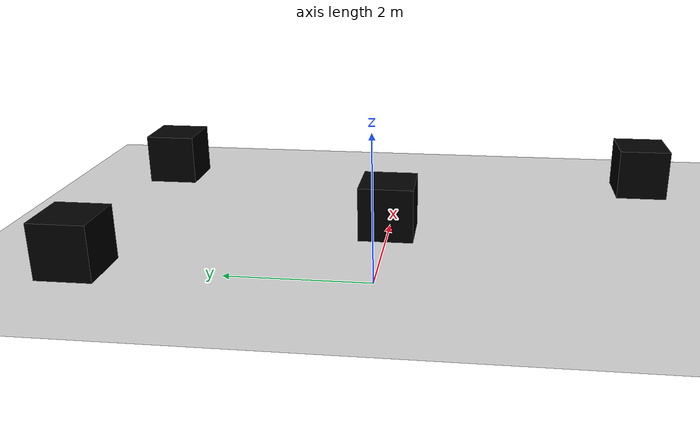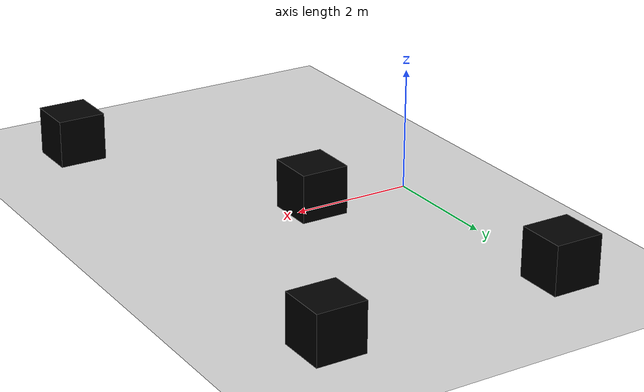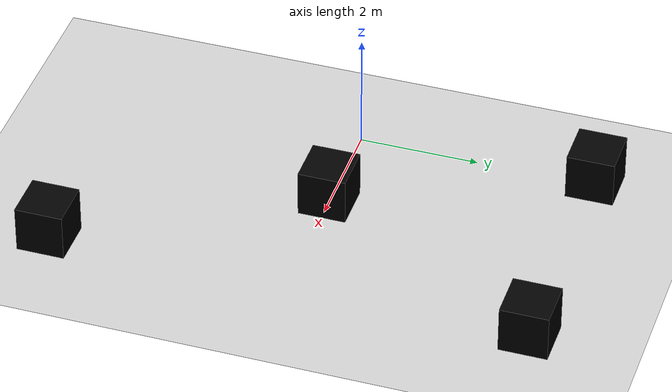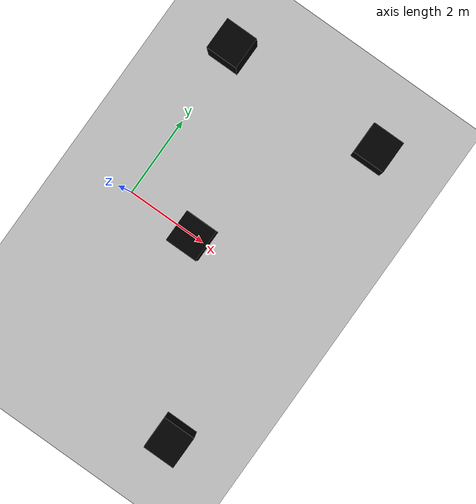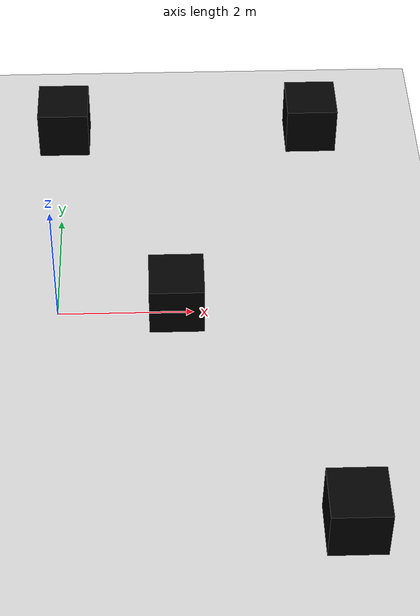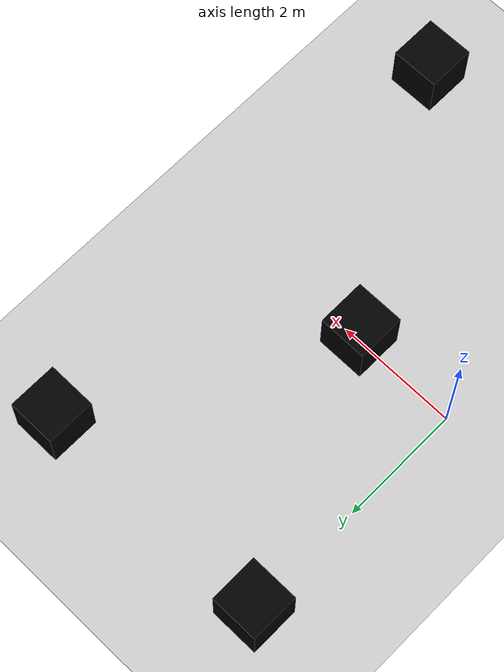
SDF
<?xml version="1.0" ?>
<sdf version="1.4">
  <world name="default">
    <!-- A global light source -->
    <include>
      <uri>model://sun</uri>
    </include>
    <!-- A ground plane -->
    <include>
      <uri>model://ground_plane</uri>
    </include>
    <include>
      <uri>model://AruCo_Block_0</uri>
      <name>AruCo_Block_0</name>
    </include>
    <include>
      <uri>model://AruCo_Block_1</uri>
      <name>AruCo_Block_1</name>
    </include>
    <include>
      <uri>model://AruCo_Block_2</uri>
      <name>AruCo_Block_2</name>
    </include>
    <include>
      <uri>model://AruCo_Block_3</uri>
      <name>AruCo_Block_3</name>
    </include>
    <!-- Own physics settings to speed up simulation -->
    <physics type='ode'>
      <max_step_size>0.01</max_step_size>
      <real_time_factor>10</real_time_factor>
      <real_time_update_rate>100</real_time_update_rate>
      <gravity>0 0 -9.8</gravity>
    </physics>
  </world>
</sdf>

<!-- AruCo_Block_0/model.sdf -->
<sdf version='1.4'>
  <model name="AruCo_Block_1">
    <static>true</static>
    <link name='chassis'>
            <pose>1.75 0 0.4 0 0 0</pose>

            <collision name='collision'>
              <geometry>
                <box>
                  <size>.8 .8 .8</size>
                </box>
              </geometry>
            </collision>

            <visual name='visual'>
              <geometry>
                <box>
                  <size>.8 .8 .8</size>
                </box>
              </geometry>
              <material>
                <script>
                <uri>model://AruCo_Block_0/materials/scripts</uri>
                <uri>model://AruCo_Block_0/materials/textures</uri>
                <name>block0</name>
                </script>
                <ambient>0 0 0 1</ambient>
                <diffuse>0 0 0 1</diffuse>
                <specular>0 0 0 0</specular>
                <emissive>1 1 1 1</emissive>
              </material>
            </visual>
          </link>
  </model>
</sdf>

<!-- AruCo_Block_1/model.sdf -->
<sdf version='1.4'>
  <model name="AruCo_Block_1">
    <static>true</static>
    <link name='chassis'>
            <pose>4 4 0.4 0 0 0</pose>

            <collision name='collision'>
              <geometry>
                <box>
                  <size>.8 .8 .8</size>
                </box>
              </geometry>
            </collision>

            <visual name='visual_0'>
              <geometry>
                <box>
                  <size>.8 .8 .8</size>
                </box>
              </geometry>
              <material>
                <script>
                <uri>model://AruCo_Block_1/materials/scripts</uri>
                <uri>model://AruCo_Block_1/materials/textures</uri>
                <name>block1</name>
                </script>
                <ambient>0 0 0 1</ambient>
                <diffuse>0 0 0 1</diffuse>
                <specular>0 0 0 0</specular>
                <emissive>1 1 1 1</emissive>
              </material>
            </visual>
          </link>
  </model>
</sdf>

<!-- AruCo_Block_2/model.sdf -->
<sdf version='1.4'>
  <model name="AruCo_Block_2">
    <static>true</static>
    <link name='chassis'>
            <pose>4 -4 0.4 0 0 0</pose>

            <collision name='collision'>
              <geometry>
                <box>
                  <size>.8 .8 .8</size>
                </box>
              </geometry>
            </collision>

            <visual name='visual'>
              <geometry>
                <box>
                  <size>.8 .8 .8</size>
                </box>
              </geometry>
              <material>
                <script>
                <uri>model://AruCo_Block_2/materials/scripts</uri>
                <uri>model://AruCo_Block_2/materials/textures</uri>
                <name>block2</name>
                </script>
                <ambient>0 0 0 1</ambient>
                <diffuse>0 0 0 1</diffuse>
                <specular>0 0 0 0</specular>
                <emissive>1 1 1 1</emissive>
              </material>
            </visual>
          </link>
  </model>
</sdf>

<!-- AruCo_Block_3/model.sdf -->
<sdf version='1.4'>
  <model name="AruCo_Block_3">
    <static>true</static>
    <link name='chassis'>
            <pose>0 4 0.4 0 0 0</pose>

            <collision name='collision'>
              <geometry>
                <box>
                  <size>.8 .8 .8</size>
                </box>
              </geometry>
            </collision>

            <visual name='visual_3'>
              <geometry>
                <box>
                  <size>.8 .8 .8</size>
                </box>
              </geometry>
              <material>
                <script>
                <uri>model://AruCo_Block_3/materials/scripts</uri>
                <uri>model://AruCo_Block_3/materials/textures</uri>
                <name>block3</name>
                </script>
                <ambient>0 0 0 1</ambient>
                <diffuse>0 0 0 1</diffuse>
                <specular>0 0 0 0</specular>
                <emissive>1 1 1 1</emissive>
              </material>
            </visual>
          </link>
  </model>
</sdf>
